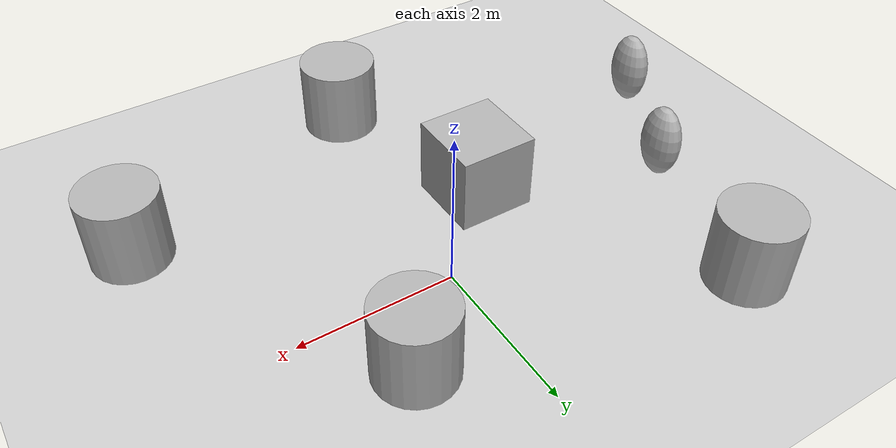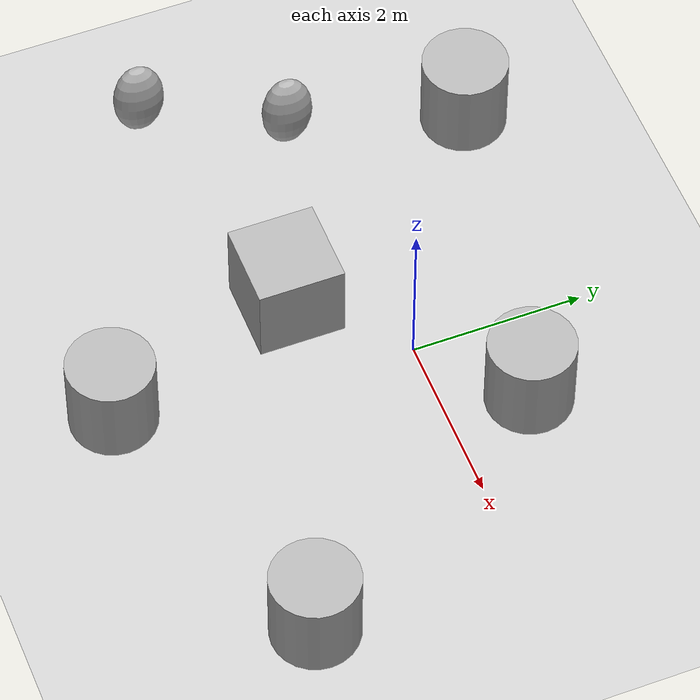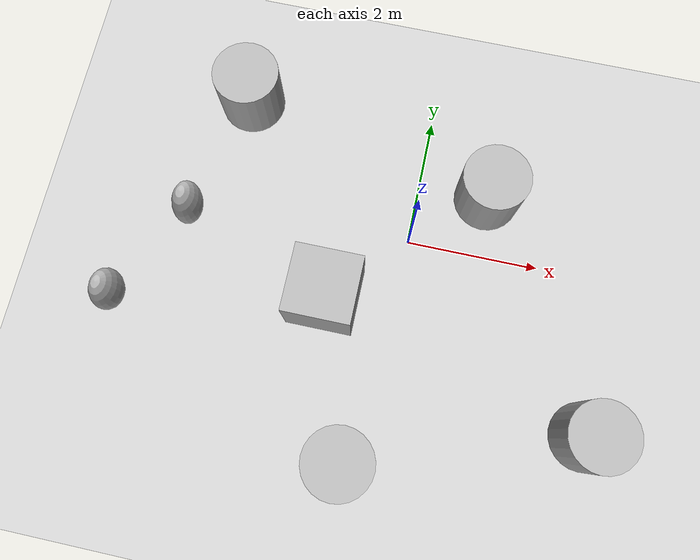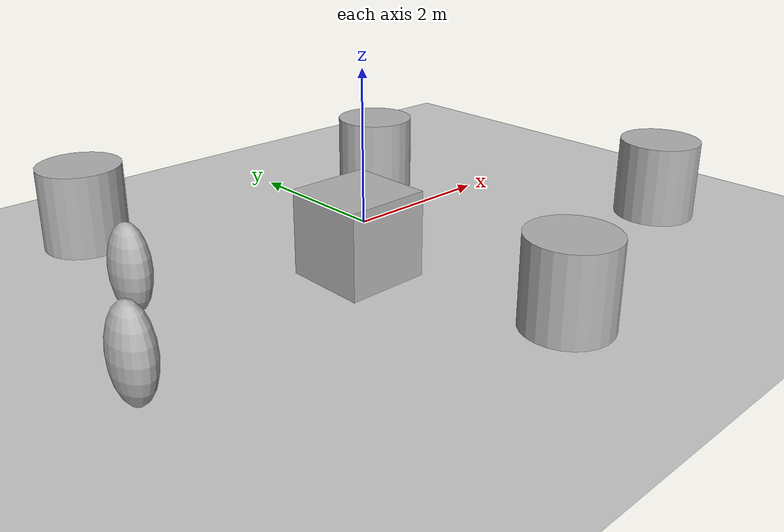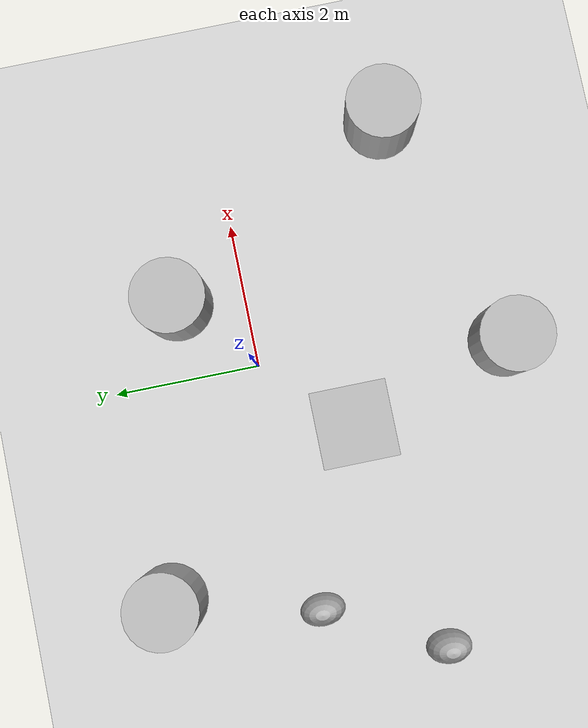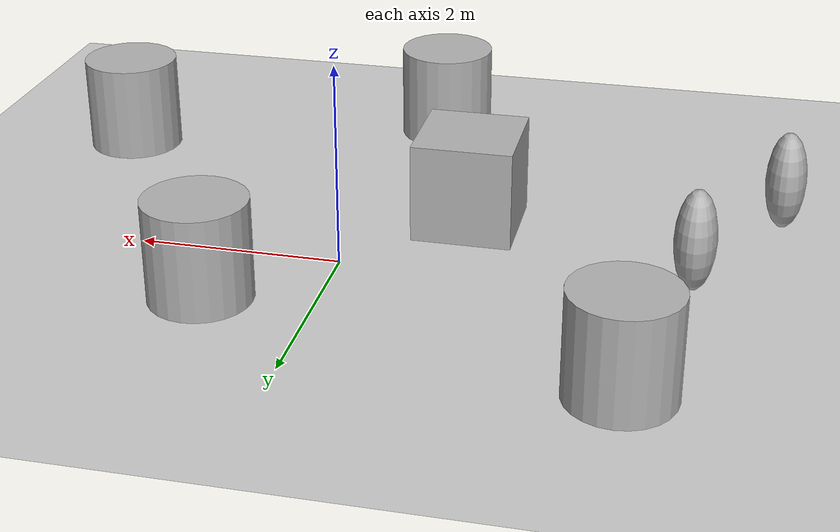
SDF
<sdf version='1.10'>
  <world name='empty'>
    <physics name='1ms' type='ignored'>
      <max_step_size>0.001</max_step_size>
      <real_time_factor>1</real_time_factor>
      <real_time_update_rate>1000</real_time_update_rate>
    </physics>
    <plugin name='gz::sim::systems::Physics' filename='gz-sim-physics-system'/>
    <plugin name='gz::sim::systems::UserCommands' filename='gz-sim-user-commands-system'/>
    <plugin name='gz::sim::systems::SceneBroadcaster' filename='gz-sim-scene-broadcaster-system'/>
    <plugin name='gz::sim::systems::Contact' filename='gz-sim-contact-system'/>
    <plugin
      filename="gz-sim-sensors-system"
      name="gz::sim::systems::Sensors">
      <render_engine>ogre2</render_engine>
    </plugin>
    <gravity>0 0 -9.8000000000000007</gravity>
    <magnetic_field>5.5644999999999998e-06 2.2875799999999999e-05 -4.2388400000000002e-05</magnetic_field>
    <atmosphere type='adiabatic'/>
    <scene>
      <ambient>0.400000006 0.400000006 0.400000006 1</ambient>
      <background>0.699999988 0.699999988 0.699999988 1</background>
      <shadows>true</shadows>
    </scene>
    <model name='ground_plane'>
      <static>true</static>
      <link name='link'>
        <collision name='collision'>
          <geometry>
            <plane>
              <normal>0 0 1</normal>
              <size>100 100</size>
            </plane>
          </geometry>
          <surface>
            <friction>
              <ode/>
            </friction>
            <bounce/>
            <contact/>
          </surface>
        </collision>
        <visual name='visual'>
          <geometry>
            <plane>
              <normal>0 0 1</normal>
              <size>100 100</size>
            </plane>
          </geometry>
          <material>
            <ambient>0.800000012 0.800000012 0.800000012 1</ambient>
            <diffuse>0.800000012 0.800000012 0.800000012 1</diffuse>
            <specular>0.800000012 0.800000012 0.800000012 1</specular>
          </material>
        </visual>
        <pose>0 0 0 0 0 0</pose>
        <inertial>
          <pose>0 0 0 0 0 0</pose>
          <mass>1</mass>
          <inertia>
            <ixx>1</ixx>
            <ixy>0</ixy>
            <ixz>0</ixz>
            <iyy>1</iyy>
            <iyz>0</iyz>
            <izz>1</izz>
          </inertia>
        </inertial>
        <enable_wind>false</enable_wind>
      </link>
      <pose>0 0 0 0 0 0</pose>
      <self_collide>false</self_collide>
    </model>
    <model name='cylinder'>
      <pose>1.0594077494444365 0.94087110019104114 0.5 0 0 0</pose>
      <link name='cylinder_link'>
        <inertial>
          <inertia>
            <ixx>0.14580000000000001</ixx>
            <ixy>0</ixy>
            <ixz>0</ixz>
            <iyy>0.14580000000000001</iyy>
            <iyz>0</iyz>
            <izz>0.125</izz>
          </inertia>
          <mass>1</mass>
          <pose>0 0 0 0 0 0</pose>
        </inertial>
        <collision name='cylinder_collision'>
          <geometry>
            <cylinder>
              <radius>0.5</radius>
              <length>1</length>
            </cylinder>
          </geometry>
          <surface>
            <friction>
              <ode/>
            </friction>
            <bounce/>
            <contact/>
          </surface>
        </collision>
        <visual name='cylinder_visual'>
          <geometry>
            <cylinder>
              <radius>0.5</radius>
              <length>1</length>
            </cylinder>
          </geometry>
          <material>
            <ambient>0.300000012 0.300000012 0.300000012 1</ambient>
            <diffuse>0.699999988 0.699999988 0.699999988 1</diffuse>
            <specular>1 1 1 1</specular>
          </material>
        </visual>
        <pose>0 0 0 0 0 0</pose>
        <enable_wind>false</enable_wind>
      </link>
      <static>false</static>
      <self_collide>false</self_collide>
    </model>
    <model name='cylinder_0'>
      <pose>-0.33782307690577262 -3.4054201911820394 0.5 0 0 0</pose>
      <link name='cylinder_link'>
        <inertial>
          <inertia>
            <ixx>0.14580000000000001</ixx>
            <ixy>0</ixy>
            <ixz>0</ixz>
            <iyy>0.14580000000000001</iyy>
            <iyz>0</iyz>
            <izz>0.125</izz>
          </inertia>
          <mass>1</mass>
          <pose>0 0 0 0 0 0</pose>
        </inertial>
        <collision name='cylinder_collision'>
          <geometry>
            <cylinder>
              <radius>0.5</radius>
              <length>1</length>
            </cylinder>
          </geometry>
          <surface>
            <friction>
              <ode/>
            </friction>
            <bounce/>
            <contact/>
          </surface>
        </collision>
        <visual name='cylinder_visual'>
          <geometry>
            <cylinder>
              <radius>0.5</radius>
              <length>1</length>
            </cylinder>
          </geometry>
          <material>
            <ambient>0.300000012 0.300000012 0.300000012 1</ambient>
            <diffuse>0.699999988 0.699999988 0.699999988 1</diffuse>
            <specular>1 1 1 1</specular>
          </material>
        </visual>
        <pose>0 0 0 0 0 0</pose>
        <enable_wind>false</enable_wind>
      </link>
      <static>false</static>
      <self_collide>false</self_collide>
    </model>
    <model name='cylinder_1'>
      <pose>3.0226496891030639 -2.3375998015997412 0.5 0 0 0</pose>
      <link name='cylinder_link'>
        <inertial>
          <inertia>
            <ixx>0.14580000000000001</ixx>
            <ixy>0</ixy>
            <ixz>0</ixz>
            <iyy>0.14580000000000001</iyy>
            <iyz>0</iyz>
            <izz>0.125</izz>
          </inertia>
          <mass>1</mass>
          <pose>0 0 0 0 0 0</pose>
        </inertial>
        <collision name='cylinder_collision'>
          <geometry>
            <cylinder>
              <radius>0.5</radius>
              <length>1</length>
            </cylinder>
          </geometry>
          <surface>
            <friction>
              <ode/>
            </friction>
            <bounce/>
            <contact/>
          </surface>
        </collision>
        <visual name='cylinder_visual'>
          <geometry>
            <cylinder>
              <radius>0.5</radius>
              <length>1</length>
            </cylinder>
          </geometry>
          <material>
            <ambient>0.300000012 0.300000012 0.300000012 1</ambient>
            <diffuse>0.699999988 0.699999988 0.699999988 1</diffuse>
            <specular>1 1 1 1</specular>
          </material>
        </visual>
        <pose>0 0 0 0 0 0</pose>
        <enable_wind>false</enable_wind>
      </link>
      <static>false</static>
      <self_collide>false</self_collide>
    </model>
    <model name='cylinder_2'>
      <pose>-2.8906803447550407 1.7843338811647811 0.5 0 0 0</pose>
      <link name='cylinder_link'>
        <inertial>
          <inertia>
            <ixx>0.14580000000000001</ixx>
            <ixy>0</ixy>
            <ixz>0</ixz>
            <iyy>0.14580000000000001</iyy>
            <iyz>0</iyz>
            <izz>0.125</izz>
          </inertia>
          <mass>1</mass>
          <pose>0 0 0 0 0 0</pose>
        </inertial>
        <collision name='cylinder_collision'>
          <geometry>
            <cylinder>
              <radius>0.5</radius>
              <length>1</length>
            </cylinder>
          </geometry>
          <surface>
            <friction>
              <ode/>
            </friction>
            <bounce/>
            <contact/>
          </surface>
        </collision>
        <visual name='cylinder_visual'>
          <geometry>
            <cylinder>
              <radius>0.5</radius>
              <length>1</length>
            </cylinder>
          </geometry>
          <material>
            <ambient>0.300000012 0.300000012 0.300000012 1</ambient>
            <diffuse>0.699999988 0.699999988 0.699999988 1</diffuse>
            <specular>1 1 1 1</specular>
          </material>
        </visual>
        <pose>0 0 0 0 0 0</pose>
        <enable_wind>false</enable_wind>
      </link>
      <static>false</static>
      <self_collide>false</self_collide>
    </model>
    <model name='box'>
      <pose>-1.0601500272750854 -1.0994325876235962 0.5 0 0 0</pose>
      <link name='box_link'>
        <inertial>
          <inertia>
            <ixx>0.16666</ixx>
            <ixy>0</ixy>
            <ixz>0</ixz>
            <iyy>0.16666</iyy>
            <iyz>0</iyz>
            <izz>0.16666</izz>
          </inertia>
          <mass>1</mass>
          <pose>0 0 0 0 0 0</pose>
        </inertial>
        <collision name='box_collision'>
          <geometry>
            <box>
              <size>1 1 1</size>
            </box>
          </geometry>
          <surface>
            <friction>
              <ode/>
            </friction>
            <bounce/>
            <contact/>
          </surface>
        </collision>
        <visual name='box_visual'>
          <geometry>
            <box>
              <size>1 1 1</size>
            </box>
          </geometry>
          <material>
            <ambient>0.300000012 0.300000012 0.300000012 1</ambient>
            <diffuse>0.699999988 0.699999988 0.699999988 1</diffuse>
            <specular>1 1 1 1</specular>
          </material>
        </visual>
        <pose>0 0 0 0 0 0</pose>
        <enable_wind>false</enable_wind>
      </link>
      <static>false</static>
      <self_collide>false</self_collide>
    </model>
    <model name='ellipsoid'>
      <pose>-4.1353523291520444 -1.7382261389762461 0.5 0 0 0</pose>
      <link name='ellipsoid_link'>
        <inertial>
          <inertia>
            <ixx>0.068000000000000005</ixx>
            <ixy>0</ixy>
            <ixz>0</ixz>
            <iyy>0.058000000000000003</iyy>
            <iyz>0</iyz>
            <izz>0.025999999999999999</izz>
          </inertia>
          <mass>1</mass>
          <pose>0 0 0 0 0 0</pose>
        </inertial>
        <collision name='ellipsoid_collision'>
          <geometry>
            <ellipsoid>
              <radii>0.20000000000000001 0.29999999999999999 0.5</radii>
            </ellipsoid>
          </geometry>
          <surface>
            <friction>
              <ode/>
            </friction>
            <bounce/>
            <contact/>
          </surface>
        </collision>
        <visual name='ellipsoid_visual'>
          <geometry>
            <ellipsoid>
              <radii>0.20000000000000001 0.29999999999999999 0.5</radii>
            </ellipsoid>
          </geometry>
          <material>
            <ambient>0.300000012 0.300000012 0.300000012 1</ambient>
            <diffuse>0.699999988 0.699999988 0.699999988 1</diffuse>
            <specular>1 1 1 1</specular>
          </material>
        </visual>
        <pose>0 0 0 0 0 0</pose>
        <enable_wind>false</enable_wind>
      </link>
      <static>false</static>
      <self_collide>false</self_collide>
    </model>
    <model name='ellipsoid_0'>
      <pose>-3.3431933699566279 -0.22043195239194047 0.5 0 0 0</pose>
      <link name='ellipsoid_link'>
        <inertial>
          <inertia>
            <ixx>0.068000000000000005</ixx>
            <ixy>0</ixy>
            <ixz>0</ixz>
            <iyy>0.058000000000000003</iyy>
            <iyz>0</iyz>
            <izz>0.025999999999999999</izz>
          </inertia>
          <mass>1</mass>
          <pose>0 0 0 0 0 0</pose>
        </inertial>
        <collision name='ellipsoid_collision'>
          <geometry>
            <ellipsoid>
              <radii>0.20000000000000001 0.29999999999999999 0.5</radii>
            </ellipsoid>
          </geometry>
          <surface>
            <friction>
              <ode/>
            </friction>
            <bounce/>
            <contact/>
          </surface>
        </collision>
        <visual name='ellipsoid_visual'>
          <geometry>
            <ellipsoid>
              <radii>0.20000000000000001 0.29999999999999999 0.5</radii>
            </ellipsoid>
          </geometry>
          <material>
            <ambient>0.300000012 0.300000012 0.300000012 1</ambient>
            <diffuse>0.699999988 0.699999988 0.699999988 1</diffuse>
            <specular>1 1 1 1</specular>
          </material>
        </visual>
        <pose>0 0 0 0 0 0</pose>
        <enable_wind>false</enable_wind>
      </link>
      <static>false</static>
      <self_collide>false</self_collide>
    </model>
    <light name='sun' type='directional'>
      <pose>0 0 10 0 0 0</pose>
      <cast_shadows>true</cast_shadows>
      <intensity>1</intensity>
      <direction>-0.5 0.10000000000000001 -0.90000000000000002</direction>
      <diffuse>0.800000012 0.800000012 0.800000012 1</diffuse>
      <specular>0.200000003 0.200000003 0.200000003 1</specular>
      <attenuation>
        <range>1000</range>
        <linear>0.01</linear>
        <constant>0.90000000000000002</constant>
        <quadratic>0.001</quadratic>
      </attenuation>
      <spot>
        <inner_angle>0</inner_angle>
        <outer_angle>0</outer_angle>
        <falloff>0</falloff>
      </spot>
    </light>
  </world>
</sdf>
